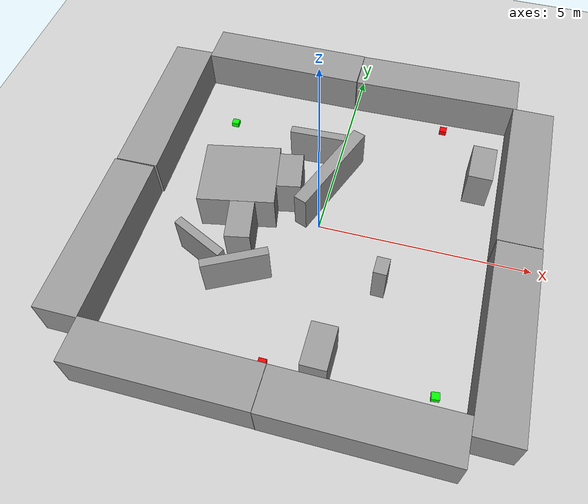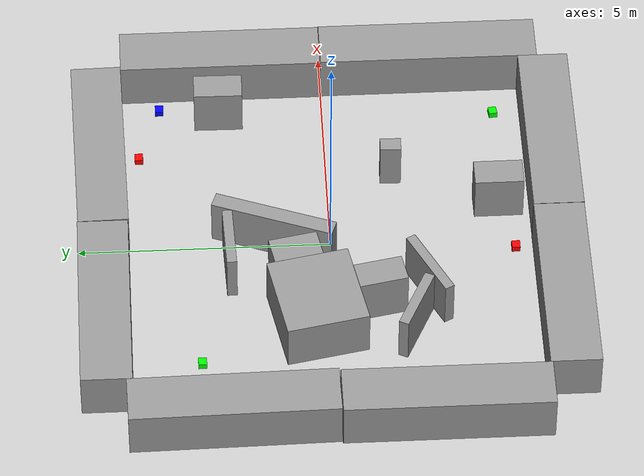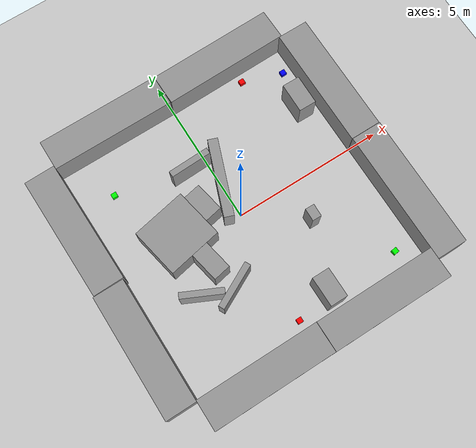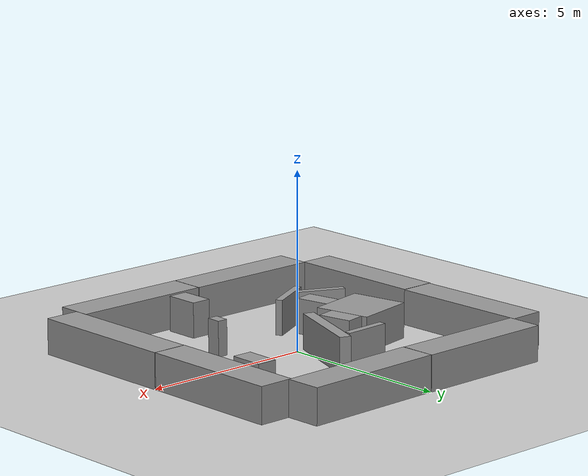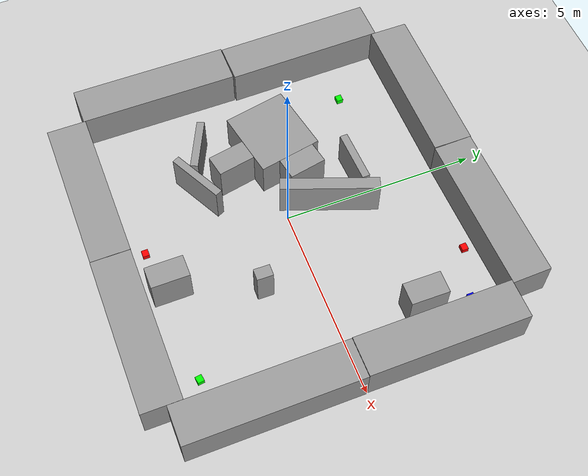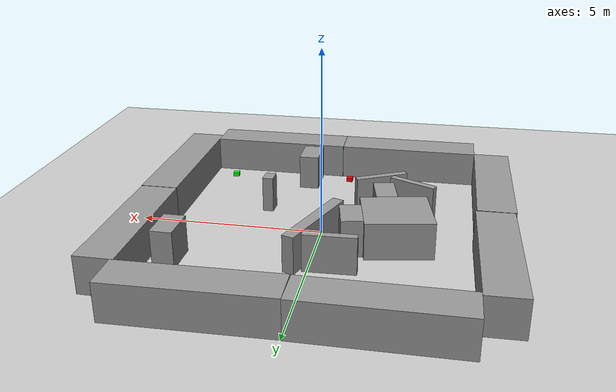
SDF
<sdf version="1.7">
 <world name="default">
  <light name="sun" type="directional">
   <cast_shadows>0</cast_shadows>
   <pose>0 0 10 0 -0 0</pose>
   <diffuse>0.8 0.8 0.8 1</diffuse>
   <specular>0.2 0.2 0.2 1</specular>
   <attenuation>
    <range>1000</range>
    <constant>0.9</constant>
    <linear>0.01</linear>
    <quadratic>0.001</quadratic>
   </attenuation>
   <direction>-0.5 0.1 -0.9</direction>
   <spot><inner_angle>0</inner_angle><outer_angle>0</outer_angle><falloff>0</falloff></spot>
  </light>
  <model name="ground_plane">
   <static>1</static>
   <link name="link">
    <collision name="collision">
     <geometry><plane><normal>0 0 1</normal><size>100 100</size></plane></geometry>
     <surface><friction><ode><mu>100</mu><mu2>50</mu2></ode></friction></surface>
    </collision>
    <visual name="visual">
     <cast_shadows>0</cast_shadows>
     <geometry><plane><normal>0 0 1</normal><size>100 100</size></plane></geometry>
     <material>
      <script><uri>file://media/materials/scripts/gazebo.material</uri><name>Gazebo/Grey</name></script>
     </material>
    </visual>
   </link>
  </model>
  <gravity>0 0 -9.8</gravity>
  <scene><ambient>0.4 0.4 0.4 1</ambient><background>0.7 0.7 0.7 1</background><shadows>1</shadows></scene>
  <magnetic_field>6e-06 2.3e-05 -4.2e-05</magnetic_field>
  <atmosphere type="adiabatic"/>
  <physics type="ode">
   <max_step_size>0.001</max_step_size>
   <real_time_factor>1</real_time_factor>
   <real_time_update_rate>1000</real_time_update_rate>
  </physics>
  <audio><device>default</device></audio>
  <spherical_coordinates>
   <surface_model>EARTH_WGS84</surface_model>
   <latitude_deg>0</latitude_deg>
   <longitude_deg>0</longitude_deg>
   <elevation>0</elevation>
   <heading_deg>0</heading_deg>
  </spherical_coordinates>
  <model name="unit_box">
   <pose>4.51344 -2.19517 0.498839 0.000529 -0 5.7e-05</pose>
   <link name="link">
    <inertial>
     <mass>1</mass>
     <inertia>
      <ixx>0.166667</ixx>
      <ixy>0</ixy>
      <ixz>0</ixz>
      <iyy>0.166667</iyy>
      <iyz>0</iyz>
      <izz>0.166667</izz>
     </inertia>
    </inertial>
    <collision name="collision"><geometry><box><size>1 4.38939 1</size></box></geometry></collision>
    <visual name="visual">
     <geometry><box><size>1 4.38939 1</size></box></geometry>
     <material>
      <script><name>Gazebo/Grey</name><uri>file://media/materials/scripts/gazebo.material</uri></script>
     </material>
    </visual>
   </link>
  </model>
  <model name="unit_box_clone">
   <pose>4.49978 2.02967 0.499214 0.000389 -0 0.000103</pose>
   <link name="link">
    <inertial>
     <mass>1</mass>
     <inertia>
      <ixx>0.166667</ixx>
      <ixy>0</ixy>
      <ixz>0</ixz>
      <iyy>0.166667</iyy>
      <iyz>0</iyz>
      <izz>0.166667</izz>
     </inertia>
    </inertial>
    <collision name="collision"><geometry><box><size>1 4.04277 1</size></box></geometry></collision>
    <visual name="visual">
     <geometry><box><size>1 4.04277 1</size></box></geometry>
     <material>
      <script><name>Gazebo/Grey</name><uri>file://media/materials/scripts/gazebo.material</uri></script>
     </material>
    </visual>
   </link>
  </model>
  <model name="unit_box_0">
   <pose>2.02676 4.51487 0.5 1e-06 -0 0.018881</pose>
   <link name="link">
    <inertial>
     <mass>1</mass>
     <inertia>
      <ixx>0.166667</ixx>
      <ixy>0</ixy>
      <ixz>0</ixz>
      <iyy>0.166667</iyy>
      <iyz>0</iyz>
      <izz>0.166667</izz>
     </inertia>
    </inertial>
    <collision name="collision"><geometry><box><size>4.09811 1 1</size></box></geometry></collision>
    <visual name="visual">
     <geometry><box><size>4.09811 1 1</size></box></geometry>
     <material>
      <script><name>Gazebo/Grey</name><uri>file://media/materials/scripts/gazebo.material</uri></script>
     </material>
    </visual>
   </link>
  </model>
  <model name="unit_box_0_clone">
   <pose>-2.04127 4.48971 0.499239 -0 0.000379 -2e-06</pose>
   <link name="link">
    <inertial>
     <mass>1</mass>
     <inertia>
      <ixx>0.166667</ixx>
      <ixy>0</ixy>
      <ixz>0</ixz>
      <iyy>0.166667</iyy>
      <iyz>0</iyz>
      <izz>0.166667</izz>
     </inertia>
    </inertial>
    <collision name="collision"><geometry><box><size>4.01582 1 1</size></box></geometry></collision>
    <visual name="visual">
     <geometry><box><size>4.01582 1 1</size></box></geometry>
     <material>
      <script><name>Gazebo/Grey</name><uri>file://media/materials/scripts/gazebo.material</uri></script>
     </material>
    </visual>
   </link>
  </model>
  <model name="unit_box_0_clone_clone">
   <pose>2.00499 -4.50301 0.499239 0 -0.000379 1e-06</pose>
   <link name="link">
    <inertial>
     <mass>1</mass>
     <inertia>
      <ixx>0.166667</ixx>
      <ixy>0</ixy>
      <ixz>0</ixz>
      <iyy>0.166667</iyy>
      <iyz>0</iyz>
      <izz>0.166667</izz>
     </inertia>
    </inertial>
    <collision name="collision"><geometry><box><size>4.01582 1 1</size></box></geometry></collision>
    <visual name="visual">
     <geometry><box><size>4.01582 1 1</size></box></geometry>
     <material>
      <script><name>Gazebo/Grey</name><uri>file://media/materials/scripts/gazebo.material</uri></script>
     </material>
    </visual>
   </link>
  </model>
  <model name="unit_box_clone_0">
   <pose>-4.52573 -2.01238 0.499196 -0.000396 0 1e-06</pose>
   <link name="link">
    <inertial>
     <mass>1</mass>
     <inertia>
      <ixx>0.166667</ixx>
      <ixy>0</ixy>
      <ixz>0</ixz>
      <iyy>0.166667</iyy>
      <iyz>0</iyz>
      <izz>0.166667</izz>
     </inertia>
    </inertial>
    <collision name="collision"><geometry><box><size>1 4.0622 1</size></box></geometry></collision>
    <visual name="visual">
     <geometry><box><size>1 4.0622 1</size></box></geometry>
     <material>
      <script><name>Gazebo/Grey</name><uri>file://media/materials/scripts/gazebo.material</uri></script>
     </material>
    </visual>
   </link>
  </model>
  <model name="unit_box_clone_1">
   <pose>-4.51946 2.07266 0.5 0 -0 0.015935</pose>
   <link name="link">
    <inertial>
     <mass>1</mass>
     <inertia>
      <ixx>0.166667</ixx>
      <ixy>0</ixy>
      <ixz>0</ixz>
      <iyy>0.166667</iyy>
      <iyz>0</iyz>
      <izz>0.166667</izz>
     </inertia>
    </inertial>
    <collision name="collision"><geometry><box><size>1 4.0622 1</size></box></geometry></collision>
    <visual name="visual">
     <geometry><box><size>1 4.0622 1</size></box></geometry>
     <material>
      <script><name>Gazebo/Grey</name><uri>file://media/materials/scripts/gazebo.material</uri></script>
     </material>
    </visual>
   </link>
  </model>
  <model name="unit_box_0_clone_clone_clone">
   <pose>-2.01673 -4.49874 0.499239 0 0.000379 7e-06</pose>
   <link name="link">
    <inertial>
     <mass>1</mass>
     <inertia>
      <ixx>0.166667</ixx>
      <ixy>0</ixy>
      <ixz>0</ixz>
      <iyy>0.166667</iyy>
      <iyz>0</iyz>
      <izz>0.166667</izz>
     </inertia>
    </inertial>
    <collision name="collision"><geometry><box><size>4.01582 1 1</size></box></geometry></collision>
    <visual name="visual">
     <geometry><box><size>4.01582 1 1</size></box></geometry>
     <material>
      <script><name>Gazebo/Grey</name><uri>file://media/materials/scripts/gazebo.material</uri></script>
     </material>
    </visual>
   </link>
  </model>
  <model name="unit_box_1_clone_1_clone_clone_1">
   <link name="link">
    <inertial>
     <mass>1</mass>
     <inertia>
      <ixx>0.166667</ixx>
      <ixy>0</ixy>
      <ixz>0</ixz>
      <iyy>0.166667</iyy>
      <iyz>0</iyz>
      <izz>0.166667</izz>
     </inertia>
    </inertial>
    <visual name="visual">
     <geometry><box><size>0.177426 0.164052 0.124949</size></box></geometry>
     <material>
      <script><name>Gazebo/Grey</name><uri>file://media/materials/scripts/gazebo.material</uri></script>
      <shader type="pixel"><normal_map>__default__</normal_map></shader>
      <ambient>0 0 1 1</ambient>
      <diffuse>0 0 1 1</diffuse>
      <specular>0 0 1 1</specular>
      <emissive>0 0 1 1</emissive>
      <lighting>1</lighting>
     </material>
    </visual>
    <collision name="collision">
     <geometry><box><size>0.177426 0.164052 0.124949</size></box></geometry>
     <surface>
      <friction>
       <ode><mu>1</mu><mu2>1</mu2><fdir1>0 0 0</fdir1><slip1>0</slip1><slip2>0</slip2></ode>
       <torsional>
        <coefficient>1</coefficient>
        <patch_radius>0</patch_radius>
        <surface_radius>0</surface_radius>
        <use_patch_radius>1</use_patch_radius>
        <ode><slip>0</slip></ode>
       </torsional>
      </friction>
      <bounce><restitution_coefficient>0</restitution_coefficient><threshold>1e+06</threshold></bounce>
      <contact>
       <collide_without_contact>0</collide_without_contact>
       <collide_without_contact_bitmask>1</collide_without_contact_bitmask>
       <collide_bitmask>1</collide_bitmask>
       <ode>
        <soft_cfm>0</soft_cfm>
        <soft_erp>0.2</soft_erp>
        <kp>1e+13</kp>
        <kd>1</kd>
        <max_vel>0.01</max_vel>
        <min_depth>0</min_depth>
       </ode>
       <bullet>
        <split_impulse>1</split_impulse>
        <split_impulse_penetration_threshold>-0.01</split_impulse_penetration_threshold>
        <soft_cfm>0</soft_cfm>
        <soft_erp>0.2</soft_erp>
        <kp>1e+13</kp>
        <kd>1</kd>
       </bullet>
      </contact>
     </surface>
    </collision>
   </link>
   <static>0</static>
   <pose>3.70179 3.29727 0.062474 3e-06 2e-06 0.002756</pose>
  </model>
  <model name="unit_box_1_clone_1_clone">
   <link name="link">
    <inertial>
     <mass>1</mass>
     <inertia>
      <ixx>0.166667</ixx>
      <ixy>0</ixy>
      <ixz>0</ixz>
      <iyy>0.166667</iyy>
      <iyz>0</iyz>
      <izz>0.166667</izz>
     </inertia>
    </inertial>
    <visual name="visual">
     <geometry><box><size>0.177426 0.164052 0.124949</size></box></geometry>
     <material>
      <script><name>Gazebo/Grey</name><uri>file://media/materials/scripts/gazebo.material</uri></script>
      <shader type="pixel"><normal_map>__default__</normal_map></shader>
      <ambient>1 0 0 1</ambient>
      <diffuse>1 0 0 1</diffuse>
      <specular>1 0 0 1</specular>
      <emissive>1 0 0 1</emissive>
      <lighting>1</lighting>
     </material>
    </visual>
    <collision name="collision">
     <geometry><box><size>0.177426 0.164052 0.124949</size></box></geometry>
     <surface>
      <friction>
       <ode><mu>1</mu><mu2>1</mu2><fdir1>0 0 0</fdir1><slip1>0</slip1><slip2>0</slip2></ode>
       <torsional>
        <coefficient>1</coefficient>
        <patch_radius>0</patch_radius>
        <surface_radius>0</surface_radius>
        <use_patch_radius>1</use_patch_radius>
        <ode><slip>0</slip></ode>
       </torsional>
      </friction>
      <bounce><restitution_coefficient>0</restitution_coefficient><threshold>1e+06</threshold></bounce>
      <contact>
       <collide_without_contact>0</collide_without_contact>
       <collide_without_contact_bitmask>1</collide_without_contact_bitmask>
       <collide_bitmask>1</collide_bitmask>
       <ode>
        <soft_cfm>0</soft_cfm>
        <soft_erp>0.2</soft_erp>
        <kp>1e+13</kp>
        <kd>1</kd>
        <max_vel>0.01</max_vel>
        <min_depth>0</min_depth>
       </ode>
       <bullet>
        <split_impulse>1</split_impulse>
        <split_impulse_penetration_threshold>-0.01</split_impulse_penetration_threshold>
        <soft_cfm>0</soft_cfm>
        <soft_erp>0.2</soft_erp>
        <kp>1e+13</kp>
        <kd>1</kd>
       </bullet>
      </contact>
     </surface>
    </collision>
   </link>
   <static>0</static>
   <pose>-0.27506 -3.65865 0.062474 3e-06 3e-06 -1.6e-05</pose>
  </model>
  <model name="unit_box_1_clone_1_clone_clone_3">
   <link name="link">
    <inertial>
     <mass>1</mass>
     <inertia>
      <ixx>0.166667</ixx>
      <ixy>0</ixy>
      <ixz>0</ixz>
      <iyy>0.166667</iyy>
      <iyz>0</iyz>
      <izz>0.166667</izz>
     </inertia>
    </inertial>
    <visual name="visual">
     <geometry><box><size>0.177426 0.164052 0.124949</size></box></geometry>
     <material>
      <script><name>Gazebo/Grey</name><uri>file://media/materials/scripts/gazebo.material</uri></script>
      <shader type="pixel"><normal_map>__default__</normal_map></shader>
      <ambient>1 0 0 1</ambient>
      <diffuse>1 0 0 1</diffuse>
      <specular>1 0 0 1</specular>
      <emissive>1 0 0 1</emissive>
      <lighting>1</lighting>
     </material>
    </visual>
    <collision name="collision">
     <geometry><box><size>0.177426 0.164052 0.124949</size></box></geometry>
     <surface>
      <friction>
       <ode><mu>1</mu><mu2>1</mu2><fdir1>0 0 0</fdir1><slip1>0</slip1><slip2>0</slip2></ode>
       <torsional>
        <coefficient>1</coefficient>
        <patch_radius>0</patch_radius>
        <surface_radius>0</surface_radius>
        <use_patch_radius>1</use_patch_radius>
        <ode><slip>0</slip></ode>
       </torsional>
      </friction>
      <bounce><restitution_coefficient>0</restitution_coefficient><threshold>1e+06</threshold></bounce>
      <contact>
       <collide_without_contact>0</collide_without_contact>
       <collide_without_contact_bitmask>1</collide_without_contact_bitmask>
       <collide_bitmask>1</collide_bitmask>
       <ode>
        <soft_cfm>0</soft_cfm>
        <soft_erp>0.2</soft_erp>
        <kp>1e+13</kp>
        <kd>1</kd>
        <max_vel>0.01</max_vel>
        <min_depth>0</min_depth>
       </ode>
       <bullet>
        <split_impulse>1</split_impulse>
        <split_impulse_penetration_threshold>-0.01</split_impulse_penetration_threshold>
        <soft_cfm>0</soft_cfm>
        <soft_erp>0.2</soft_erp>
        <kp>1e+13</kp>
        <kd>1</kd>
       </bullet>
      </contact>
     </surface>
    </collision>
   </link>
   <static>0</static>
   <pose>2.4034 3.7401 0.062475 -4e-06 -1e-06 -0.000894</pose>
  </model>
  <model name="unit_box_1_clone_1_clone_clone_2_clone">
   <link name="link">
    <inertial>
     <mass>1</mass>
     <inertia>
      <ixx>0.166667</ixx>
      <ixy>0</ixy>
      <ixz>0</ixz>
      <iyy>0.166667</iyy>
      <iyz>0</iyz>
      <izz>0.166667</izz>
     </inertia>
    </inertial>
    <visual name="visual">
     <geometry><box><size>0.177426 0.164052 0.124949</size></box></geometry>
     <material>
      <script><name>Gazebo/Grey</name><uri>file://media/materials/scripts/gazebo.material</uri></script>
      <shader type="pixel"><normal_map>__default__</normal_map></shader>
      <ambient>0 1 0 1</ambient>
      <diffuse>0 1 0 1</diffuse>
      <specular>0 1 0 1</specular>
      <emissive>0 1 0 1</emissive>
      <lighting>1</lighting>
     </material>
    </visual>
    <collision name="collision">
     <geometry><box><size>0.177426 0.164052 0.124949</size></box></geometry>
     <surface>
      <friction>
       <ode><mu>1</mu><mu2>1</mu2><fdir1>0 0 0</fdir1><slip1>0</slip1><slip2>0</slip2></ode>
       <torsional>
        <coefficient>1</coefficient>
        <patch_radius>0</patch_radius>
        <surface_radius>0</surface_radius>
        <use_patch_radius>1</use_patch_radius>
        <ode><slip>0</slip></ode>
       </torsional>
      </friction>
      <bounce><restitution_coefficient>0</restitution_coefficient><threshold>1e+06</threshold></bounce>
      <contact>
       <collide_without_contact>0</collide_without_contact>
       <collide_without_contact_bitmask>1</collide_without_contact_bitmask>
       <collide_bitmask>1</collide_bitmask>
       <ode>
        <soft_cfm>0</soft_cfm>
        <soft_erp>0.2</soft_erp>
        <kp>1e+13</kp>
        <kd>1</kd>
        <max_vel>0.01</max_vel>
        <min_depth>0</min_depth>
       </ode>
       <bullet>
        <split_impulse>1</split_impulse>
        <split_impulse_penetration_threshold>-0.01</split_impulse_penetration_threshold>
        <soft_cfm>0</soft_cfm>
        <soft_erp>0.2</soft_erp>
        <kp>1e+13</kp>
        <kd>1</kd>
       </bullet>
      </contact>
     </surface>
    </collision>
   </link>
   <static>0</static>
   <pose>3.33493 -3.46654 0.062474 -4e-06 2e-06 0.131002</pose>
  </model>
  <model name="unit_box_1_clone_0_clone">
   <link name="link">
    <inertial>
     <mass>1</mass>
     <inertia>
      <ixx>0.166667</ixx>
      <ixy>0</ixy>
      <ixz>0</ixz>
      <iyy>0.166667</iyy>
      <iyz>0</iyz>
      <izz>0.166667</izz>
     </inertia>
    </inertial>
    <visual name="visual">
     <geometry><box><size>1.50144 0.197957 1</size></box></geometry>
     <material>
      <script><name>Gazebo/Grey</name><uri>file://media/materials/scripts/gazebo.material</uri></script>
      <shader type="pixel"/>
     </material>
    </visual>
    <collision name="collision">
     <geometry><box><size>1.50144 0.197957 1</size></box></geometry>
     <surface>
      <friction>
       <ode><mu>1</mu><mu2>1</mu2><fdir1>0 0 0</fdir1><slip1>0</slip1><slip2>0</slip2></ode>
       <torsional>
        <coefficient>1</coefficient>
        <patch_radius>0</patch_radius>
        <surface_radius>0</surface_radius>
        <use_patch_radius>1</use_patch_radius>
        <ode><slip>0</slip></ode>
       </torsional>
      </friction>
      <bounce><restitution_coefficient>0</restitution_coefficient><threshold>1e+06</threshold></bounce>
      <contact>
       <collide_without_contact>0</collide_without_contact>
       <collide_without_contact_bitmask>1</collide_without_contact_bitmask>
       <collide_bitmask>1</collide_bitmask>
       <ode>
        <soft_cfm>0</soft_cfm>
        <soft_erp>0.2</soft_erp>
        <kp>1e+13</kp>
        <kd>1</kd>
        <max_vel>0.01</max_vel>
        <min_depth>0</min_depth>
       </ode>
       <bullet>
        <split_impulse>1</split_impulse>
        <split_impulse_penetration_threshold>-0.01</split_impulse_penetration_threshold>
        <soft_cfm>0</soft_cfm>
        <soft_erp>0.2</soft_erp>
        <kp>1e+13</kp>
        <kd>1</kd>
       </bullet>
      </contact>
     </surface>
    </collision>
   </link>
   <static>0</static>
   <pose>-1.40427 -1.86548 0.499998 0 -2e-06 0.470315</pose>
  </model>
  <model name="unit_box_1_clone">
   <pose>-2.01398 0.352975 0.499992 1e-05 -0 0.191195</pose>
   <link name="link">
    <inertial>
     <mass>1</mass>
     <inertia>
      <ixx>0.166667</ixx>
      <ixy>0</ixy>
      <ixz>0</ixz>
      <iyy>0.166667</iyy>
      <iyz>0</iyz>
      <izz>0.166667</izz>
     </inertia>
    </inertial>
    <collision name="collision"><geometry><box><size>1.77993 1.6283 1</size></box></geometry></collision>
    <visual name="visual">
     <geometry><box><size>1.77993 1.6283 1</size></box></geometry>
     <material>
      <script><name>Gazebo/Grey</name><uri>file://media/materials/scripts/gazebo.material</uri></script>
     </material>
    </visual>
   </link>
  </model>
  <model name="unit_box_1_clone_clone">
   <pose>-0.890654 0.73129 0.499998 -0 7e-06 0.191093</pose>
   <link name="link">
    <inertial>
     <mass>1</mass>
     <inertia>
      <ixx>0.166667</ixx>
      <ixy>0</ixy>
      <ixz>0</ixz>
      <iyy>0.166667</iyy>
      <iyz>0</iyz>
      <izz>0.166667</izz>
     </inertia>
    </inertial>
    <collision name="collision"><geometry><box><size>0.569355 0.968967 1</size></box></geometry></collision>
    <visual name="visual">
     <geometry><box><size>0.569355 0.968967 1</size></box></geometry>
     <material>
      <script><name>Gazebo/Grey</name><uri>file://media/materials/scripts/gazebo.material</uri></script>
     </material>
    </visual>
   </link>
  </model>
  <model name="unit_box_1_clone_clone_0">
   <pose>-1.60684 -0.891299 0.5 0 -0 0.192251</pose>
   <link name="link">
    <inertial>
     <mass>1</mass>
     <inertia>
      <ixx>0.166667</ixx>
      <ixy>0</ixy>
      <ixz>0</ixz>
      <iyy>0.166667</iyy>
      <iyz>0</iyz>
      <izz>0.166667</izz>
     </inertia>
    </inertial>
    <collision name="collision"><geometry><box><size>0.569354 0.968966 1</size></box></geometry></collision>
    <visual name="visual">
     <geometry><box><size>0.569354 0.968966 1</size></box></geometry>
     <material>
      <script><name>Gazebo/Grey</name><uri>file://media/materials/scripts/gazebo.material</uri></script>
     </material>
    </visual>
   </link>
  </model>
  <model name="unit_box_1_clone_clone_0_clone">
   <pose>-0.009567 1.12007 0.499914 1e-06 -3e-05 1.21331</pose>
   <link name="link">
    <inertial>
     <mass>1</mass>
     <inertia>
      <ixx>0.166667</ixx>
      <ixy>0</ixy>
      <ixz>0</ixz>
      <iyy>0.166667</iyy>
      <iyz>0</iyz>
      <izz>0.166667</izz>
     </inertia>
    </inertial>
    <collision name="collision"><geometry><box><size>2.49086 0.319187 1</size></box></geometry></collision>
    <visual name="visual">
     <geometry><box><size>2.49086 0.319187 1</size></box></geometry>
     <material>
      <script><name>Gazebo/Grey</name><uri>file://media/materials/scripts/gazebo.material</uri></script>
     </material>
    </visual>
   </link>
  </model>
  <model name="unit_box_1_clone_0_clone_clone">
   <link name="link">
    <inertial>
     <mass>1</mass>
     <inertia>
      <ixx>0.166667</ixx>
      <ixy>0</ixy>
      <ixz>0</ixz>
      <iyy>0.166667</iyy>
      <iyz>0</iyz>
      <izz>0.166667</izz>
     </inertia>
    </inertial>
    <visual name="visual">
     <geometry><box><size>1.34724 0.197957 1</size></box></geometry>
     <material>
      <script><name>Gazebo/Grey</name><uri>file://media/materials/scripts/gazebo.material</uri></script>
      <shader type="pixel"/>
     </material>
    </visual>
    <collision name="collision">
     <geometry><box><size>1.34724 0.197957 1</size></box></geometry>
     <surface>
      <friction>
       <ode><mu>1</mu><mu2>1</mu2><fdir1>0 0 0</fdir1><slip1>0</slip1><slip2>0</slip2></ode>
       <torsional>
        <coefficient>1</coefficient>
        <patch_radius>0</patch_radius>
        <surface_radius>0</surface_radius>
        <use_patch_radius>1</use_patch_radius>
        <ode><slip>0</slip></ode>
       </torsional>
      </friction>
      <bounce><restitution_coefficient>0</restitution_coefficient><threshold>1e+06</threshold></bounce>
      <contact>
       <collide_without_contact>0</collide_without_contact>
       <collide_without_contact_bitmask>1</collide_without_contact_bitmask>
       <collide_bitmask>1</collide_bitmask>
       <ode>
        <soft_cfm>0</soft_cfm>
        <soft_erp>0.2</soft_erp>
        <kp>1e+13</kp>
        <kd>1</kd>
        <max_vel>0.01</max_vel>
        <min_depth>0</min_depth>
       </ode>
       <bullet>
        <split_impulse>1</split_impulse>
        <split_impulse_penetration_threshold>-0.01</split_impulse_penetration_threshold>
        <soft_cfm>0</soft_cfm>
        <soft_erp>0.2</soft_erp>
        <kp>1e+13</kp>
        <kd>1</kd>
       </bullet>
      </contact>
     </surface>
    </collision>
   </link>
   <static>0</static>
   <pose>-0.550857 2.01442 0.499995 0 8e-06 0.033993</pose>
  </model>
  <model name="unit_box_1_clone_0_clone_clone_0">
   <link name="link">
    <inertial>
     <mass>1</mass>
     <inertia>
      <ixx>0.166667</ixx>
      <ixy>0</ixy>
      <ixz>0</ixz>
      <iyy>0.166667</iyy>
      <iyz>0</iyz>
      <izz>0.166667</izz>
     </inertia>
    </inertial>
    <visual name="visual">
     <geometry><box><size>1.34724 0.197957 1</size></box></geometry>
     <material>
      <script><name>Gazebo/Grey</name><uri>file://media/materials/scripts/gazebo.material</uri></script>
      <shader type="pixel"/>
     </material>
    </visual>
    <collision name="collision">
     <geometry><box><size>1.34724 0.197957 1</size></box></geometry>
     <surface>
      <friction>
       <ode><mu>1</mu><mu2>1</mu2><fdir1>0 0 0</fdir1><slip1>0</slip1><slip2>0</slip2></ode>
       <torsional>
        <coefficient>1</coefficient>
        <patch_radius>0</patch_radius>
        <surface_radius>0</surface_radius>
        <use_patch_radius>1</use_patch_radius>
        <ode><slip>0</slip></ode>
       </torsional>
      </friction>
      <bounce><restitution_coefficient>0</restitution_coefficient><threshold>1e+06</threshold></bounce>
      <contact>
       <collide_without_contact>0</collide_without_contact>
       <collide_without_contact_bitmask>1</collide_without_contact_bitmask>
       <collide_bitmask>1</collide_bitmask>
       <ode>
        <soft_cfm>0</soft_cfm>
        <soft_erp>0.2</soft_erp>
        <kp>1e+13</kp>
        <kd>1</kd>
        <max_vel>0.01</max_vel>
        <min_depth>0</min_depth>
       </ode>
       <bullet>
        <split_impulse>1</split_impulse>
        <split_impulse_penetration_threshold>-0.01</split_impulse_penetration_threshold>
        <soft_cfm>0</soft_cfm>
        <soft_erp>0.2</soft_erp>
        <kp>1e+13</kp>
        <kd>1</kd>
       </bullet>
      </contact>
     </surface>
    </collision>
   </link>
   <static>0</static>
   <pose>-2.32273 -1.54844 0.499996 0 -6e-06 2.69288</pose>
  </model>
  <model name="unit_box_1_clone_clone_clone">
   <pose>1.7165 -1.28061 0.499999 -3e-06 -3e-06 -0.02347</pose>
   <link name="link">
    <inertial>
     <mass>1</mass>
     <inertia>
      <ixx>0.166667</ixx>
      <ixy>0</ixy>
      <ixz>0</ixz>
      <iyy>0.166667</iyy>
      <iyz>0</iyz>
      <izz>0.166667</izz>
     </inertia>
    </inertial>
    <collision name="collision"><geometry><box><size>0.298664 0.413367 1</size></box></geometry></collision>
    <visual name="visual">
     <geometry><box><size>0.298664 0.413367 1</size></box></geometry>
     <material>
      <script><name>Gazebo/Grey</name><uri>file://media/materials/scripts/gazebo.material</uri></script>
     </material>
    </visual>
   </link>
  </model>
  <model name="unit_box_1_clone_clone_1">
   <pose>3.46614 2.10326 0.499999 -0 -4e-06 -0.013267</pose>
   <link name="link">
    <inertial>
     <mass>1</mass>
     <inertia>
      <ixx>0.166667</ixx>
      <ixy>0</ixy>
      <ixz>0</ixz>
      <iyy>0.166667</iyy>
      <iyz>0</iyz>
      <izz>0.166667</izz>
     </inertia>
    </inertial>
    <collision name="collision"><geometry><box><size>0.569355 0.968969 1</size></box></geometry></collision>
    <visual name="visual">
     <geometry><box><size>0.569355 0.968969 1</size></box></geometry>
     <material>
      <script><name>Gazebo/Grey</name><uri>file://media/materials/scripts/gazebo.material</uri></script>
     </material>
    </visual>
   </link>
  </model>
  <model name="unit_box_1_clone_clone_2">
   <pose>0.87993 -3.37913 0.5 0 -0 0.002538</pose>
   <link name="link">
    <inertial>
     <mass>1</mass>
     <inertia>
      <ixx>0.166667</ixx>
      <ixy>0</ixy>
      <ixz>0</ixz>
      <iyy>0.166667</iyy>
      <iyz>0</iyz>
      <izz>0.166667</izz>
     </inertia>
    </inertial>
    <collision name="collision"><geometry><box><size>0.569353 0.968965 1</size></box></geometry></collision>
    <visual name="visual">
     <geometry><box><size>0.569353 0.968965 1</size></box></geometry>
     <material>
      <script><name>Gazebo/Grey</name><uri>file://media/materials/scripts/gazebo.material</uri></script>
     </material>
    </visual>
   </link>
  </model>
  <model name="unit_box_1_clone_1_clone_clone_2_clone_clone">
   <link name="link">
    <inertial>
     <mass>1</mass>
     <inertia>
      <ixx>0.166667</ixx>
      <ixy>0</ixy>
      <ixz>0</ixz>
      <iyy>0.166667</iyy>
      <iyz>0</iyz>
      <izz>0.166667</izz>
     </inertia>
    </inertial>
    <visual name="visual">
     <geometry><box><size>0.177426 0.164052 0.124949</size></box></geometry>
     <material>
      <script><name>Gazebo/Grey</name><uri>file://media/materials/scripts/gazebo.material</uri></script>
      <shader type="pixel"><normal_map>__default__</normal_map></shader>
      <ambient>0 1 0 1</ambient>
      <diffuse>0 1 0 1</diffuse>
      <specular>0 1 0 1</specular>
      <emissive>0 1 0 1</emissive>
      <lighting>1</lighting>
     </material>
    </visual>
    <collision name="collision">
     <geometry><box><size>0.177426 0.164052 0.124949</size></box></geometry>
     <surface>
      <friction>
       <ode><mu>1</mu><mu2>1</mu2><fdir1>0 0 0</fdir1><slip1>0</slip1><slip2>0</slip2></ode>
       <torsional>
        <coefficient>1</coefficient>
        <patch_radius>0</patch_radius>
        <surface_radius>0</surface_radius>
        <use_patch_radius>1</use_patch_radius>
        <ode><slip>0</slip></ode>
       </torsional>
      </friction>
      <bounce><restitution_coefficient>0</restitution_coefficient><threshold>1e+06</threshold></bounce>
      <contact>
       <collide_without_contact>0</collide_without_contact>
       <collide_without_contact_bitmask>1</collide_without_contact_bitmask>
       <collide_bitmask>1</collide_bitmask>
       <ode>
        <soft_cfm>0</soft_cfm>
        <soft_erp>0.2</soft_erp>
        <kp>1e+13</kp>
        <kd>1</kd>
        <max_vel>0.01</max_vel>
        <min_depth>0</min_depth>
       </ode>
       <bullet>
        <split_impulse>1</split_impulse>
        <split_impulse_penetration_threshold>-0.01</split_impulse_penetration_threshold>
        <soft_cfm>0</soft_cfm>
        <soft_erp>0.2</soft_erp>
        <kp>1e+13</kp>
        <kd>1</kd>
       </bullet>
      </contact>
     </surface>
    </collision>
   </link>
   <static>0</static>
   <pose>-2.97144 2.63571 0.062474 1e-06 5e-06 1.5e-05</pose>
  </model>
 </world>
</sdf>
